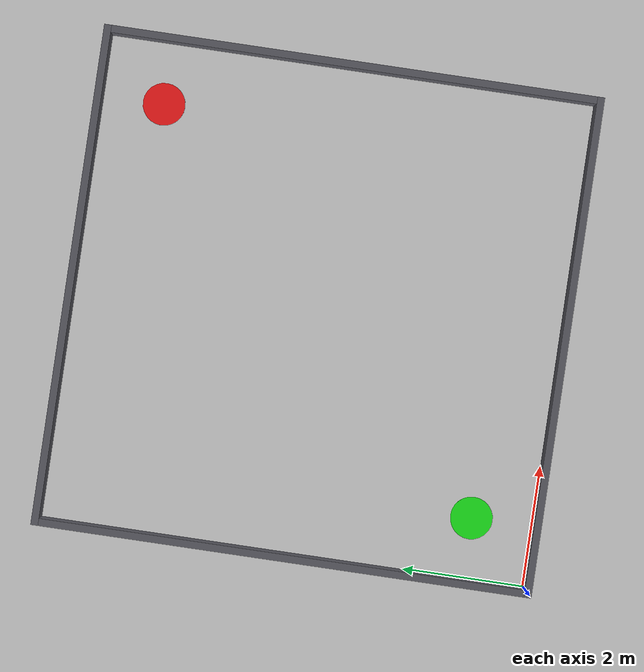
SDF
<?xml version="1.0" ?>
<!--
  8m×8m 训练/展示场地（内沿约 x,y ∈ [0,8]）。
  起点 (1,1)、终点 (7,7)；随机障碍由外部 SpawnEntity 注入（见项目根目录 demo_obstacles.py）。
-->
<sdf version="1.6">
  <world name="arena_8x8">
    <gravity>0 0 -9.8</gravity>
    <physics type="ode">
      <max_step_size>0.001</max_step_size>
      <real_time_factor>1.0</real_time_factor>
      <real_time_update_rate>1000</real_time_update_rate>
    </physics>

    <plugin name="gazebo_ros_state" filename="libgazebo_ros_state.so">
      <update_rate>50.0</update_rate>
    </plugin>

    <include>
      <uri>model://sun</uri>
    </include>
    <include>
      <uri>model://ground_plane</uri>
    </include>

    <!-- 围墙：内沿约 [0,8]×[0,8]，墙厚 0.12 -->
    <model name="a8_wall_south">
      <static>true</static>
      <pose>4.0 -0.06 0.35 0 0 0</pose>
      <link name="link">
        <collision name="c"><geometry><box><size>8.24 0.12 0.7</size></box></geometry></collision>
        <visual name="v">
          <geometry><box><size>8.24 0.12 0.7</size></box></geometry>
          <material>
            <ambient>0.22 0.22 0.24 1</ambient>
            <diffuse>0.35 0.35 0.38 1</diffuse>
          </material>
        </visual>
      </link>
    </model>
    <model name="a8_wall_north">
      <static>true</static>
      <pose>4.0 8.06 0.35 0 0 0</pose>
      <link name="link">
        <collision name="c"><geometry><box><size>8.24 0.12 0.7</size></box></geometry></collision>
        <visual name="v">
          <geometry><box><size>8.24 0.12 0.7</size></box></geometry>
          <material>
            <ambient>0.22 0.22 0.24 1</ambient>
            <diffuse>0.35 0.35 0.38 1</diffuse>
          </material>
        </visual>
      </link>
    </model>
    <model name="a8_wall_west">
      <static>true</static>
      <pose>-0.06 4.0 0.35 0 0 0</pose>
      <link name="link">
        <collision name="c"><geometry><box><size>0.12 8.24 0.7</size></box></geometry></collision>
        <visual name="v">
          <geometry><box><size>0.12 8.24 0.7</size></box></geometry>
          <material>
            <ambient>0.22 0.22 0.24 1</ambient>
            <diffuse>0.35 0.35 0.38 1</diffuse>
          </material>
        </visual>
      </link>
    </model>
    <model name="a8_wall_east">
      <static>true</static>
      <pose>8.06 4.0 0.35 0 0 0</pose>
      <link name="link">
        <collision name="c"><geometry><box><size>0.12 8.24 0.7</size></box></geometry></collision>
        <visual name="v">
          <geometry><box><size>0.12 8.24 0.7</size></box></geometry>
          <material>
            <ambient>0.22 0.22 0.24 1</ambient>
            <diffuse>0.35 0.35 0.38 1</diffuse>
          </material>
        </visual>
      </link>
    </model>

    <model name="a8_start_marker">
      <static>true</static>
      <pose>1.0 1.0 0.01 0 0 0</pose>
      <link name="link">
        <visual name="visual">
          <geometry>
            <cylinder><radius>0.35</radius><length>0.02</length></cylinder>
          </geometry>
          <material>
            <ambient>0.1 0.8 0.1 1</ambient>
            <diffuse>0.1 0.9 0.1 1</diffuse>
          </material>
        </visual>
      </link>
    </model>
    <model name="a8_goal_marker">
      <static>true</static>
      <pose>7.0 7.0 0.01 0 0 0</pose>
      <link name="link">
        <visual name="visual">
          <geometry>
            <cylinder><radius>0.35</radius><length>0.02</length></cylinder>
          </geometry>
          <material>
            <ambient>0.85 0.1 0.1 1</ambient>
            <diffuse>0.95 0.1 0.1 1</diffuse>
          </material>
        </visual>
      </link>
    </model>

    <gui fullscreen="0">
      <camera name="user_camera">
        <pose>4 -9 12 0 0.52 1.57</pose>
      </camera>
    </gui>
  </world>
</sdf>
